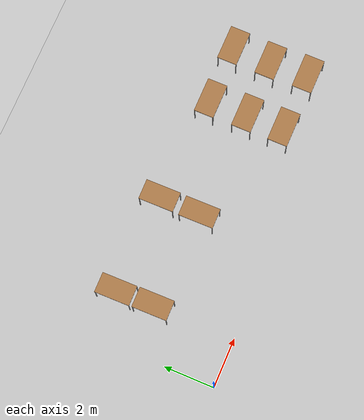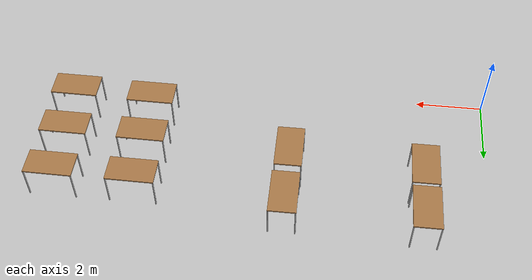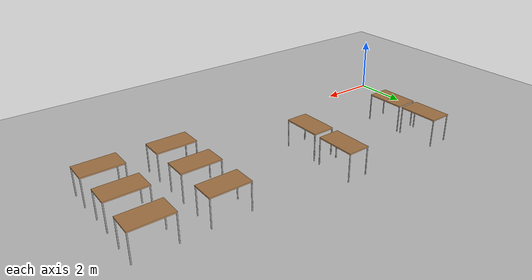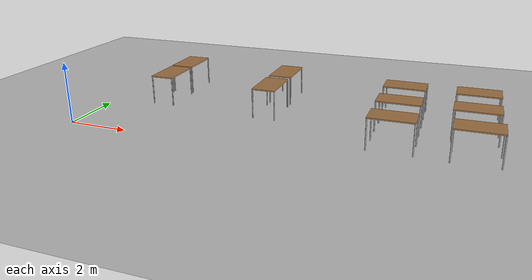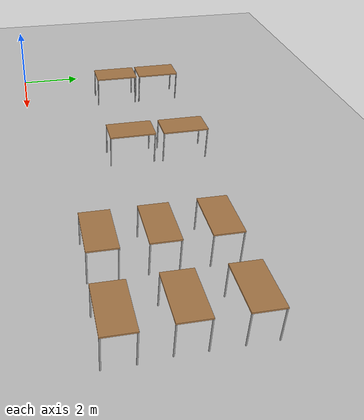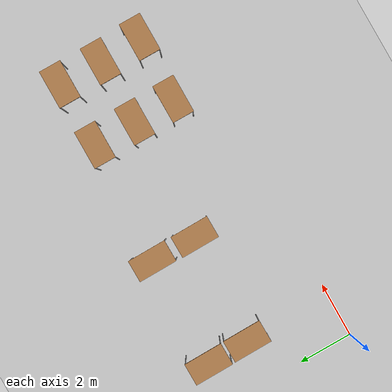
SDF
<sdf version="1.6">
 <world name="default">
  <model name="ground_plane">
   <static>1</static>
   <link name="link">
    <collision name="collision">
     <geometry><plane><normal>0 0 1</normal><size>100 100</size></plane></geometry>
     <surface><friction><ode><mu>100</mu><mu2>50</mu2></ode></friction></surface>
    </collision>
    <visual name="visual">
     <cast_shadows>0</cast_shadows>
     <geometry><plane><normal>0 0 1</normal><size>100 100</size></plane></geometry>
     <material>
      <script><uri>file://media/materials/scripts/gazebo.material</uri><name>Gazebo/Grey</name></script>
     </material>
    </visual>
   </link>
  </model>
  <model name="table">
   <static>0</static>
   <link name="link">
    <collision name="surface">
     <pose>0 0 1 0 -0 0</pose>
     <geometry><box><size>1.5 0.8 0.03</size></box></geometry>
     <surface><friction><ode><mu>0.6</mu><mu2>0.6</mu2></ode></friction></surface>
    </collision>
    <visual name="visual1">
     <pose>0 0 1 0 -0 0</pose>
     <geometry><box><size>1.4 0.8 0.04</size></box></geometry>
     <material>
      <script><uri>file://media/materials/scripts/gazebo.material</uri><name>Gazebo/Wood</name></script>
     </material>
    </visual>
    <collision name="front_left_leg">
     <pose>0.68 0.38 0.5 0 -0 0</pose>
     <geometry><cylinder><radius>0.02</radius><length>1</length></cylinder></geometry>
    </collision>
    <visual name="front_left_leg">
     <pose>0.68 0.38 0.5 0 -0 0</pose>
     <geometry><cylinder><radius>0.02</radius><length>1</length></cylinder></geometry>
     <material>
      <script><uri>file://media/materials/scripts/gazebo.material</uri><name>Gazebo/Grey</name></script>
     </material>
    </visual>
    <collision name="front_right_leg">
     <pose>0.68 -0.38 0.5 0 -0 0</pose>
     <geometry><cylinder><radius>0.02</radius><length>1</length></cylinder></geometry>
    </collision>
    <visual name="front_right_leg">
     <pose>0.68 -0.38 0.5 0 -0 0</pose>
     <geometry><cylinder><radius>0.02</radius><length>1</length></cylinder></geometry>
     <material>
      <script><uri>file://media/materials/scripts/gazebo.material</uri><name>Gazebo/Grey</name></script>
     </material>
    </visual>
    <collision name="back_right_leg">
     <pose>-0.68 -0.38 0.5 0 -0 0</pose>
     <geometry><cylinder><radius>0.02</radius><length>1</length></cylinder></geometry>
    </collision>
    <visual name="back_right_leg">
     <pose>-0.68 -0.38 0.5 0 -0 0</pose>
     <geometry><cylinder><radius>0.02</radius><length>1</length></cylinder></geometry>
     <material>
      <script><uri>file://media/materials/scripts/gazebo.material</uri><name>Gazebo/Grey</name></script>
     </material>
    </visual>
    <collision name="back_left_leg">
     <pose>-0.68 0.38 0.5 0 -0 0</pose>
     <geometry><cylinder><radius>0.02</radius><length>1</length></cylinder></geometry>
    </collision>
    <visual name="back_left_leg">
     <pose>-0.68 0.38 0.5 0 -0 0</pose>
     <geometry><cylinder><radius>0.02</radius><length>1</length></cylinder></geometry>
     <material>
      <script><uri>file://media/materials/scripts/gazebo.material</uri><name>Gazebo/Grey</name></script>
     </material>
    </visual>
    <inertial>
     <inertia><ixx>1</ixx><ixy>0</ixy><ixz>0</ixz><iyy>1</iyy><iyz>0</iyz><izz>1</izz></inertia>
     <mass>1</mass>
    </inertial>
   </link>
   <pose>12.4431 4.43763 -1e-06 0 1e-06 0</pose>
  </model>
  <model name="table_clone">
   <static>0</static>
   <link name="link">
    <collision name="surface">
     <pose>0 0 1 0 -0 0</pose>
     <geometry><box><size>1.5 0.8 0.03</size></box></geometry>
     <surface><friction><ode><mu>0.6</mu><mu2>0.6</mu2></ode></friction></surface>
    </collision>
    <visual name="visual1">
     <pose>0 0 1 0 -0 0</pose>
     <geometry><box><size>1.4 0.8 0.04</size></box></geometry>
     <material>
      <script><uri>file://media/materials/scripts/gazebo.material</uri><name>Gazebo/Wood</name></script>
     </material>
    </visual>
    <collision name="front_left_leg">
     <pose>0.68 0.38 0.5 0 -0 0</pose>
     <geometry><cylinder><radius>0.02</radius><length>1</length></cylinder></geometry>
    </collision>
    <visual name="front_left_leg">
     <pose>0.68 0.38 0.5 0 -0 0</pose>
     <geometry><cylinder><radius>0.02</radius><length>1</length></cylinder></geometry>
     <material>
      <script><uri>file://media/materials/scripts/gazebo.material</uri><name>Gazebo/Grey</name></script>
     </material>
    </visual>
    <collision name="front_right_leg">
     <pose>0.68 -0.38 0.5 0 -0 0</pose>
     <geometry><cylinder><radius>0.02</radius><length>1</length></cylinder></geometry>
    </collision>
    <visual name="front_right_leg">
     <pose>0.68 -0.38 0.5 0 -0 0</pose>
     <geometry><cylinder><radius>0.02</radius><length>1</length></cylinder></geometry>
     <material>
      <script><uri>file://media/materials/scripts/gazebo.material</uri><name>Gazebo/Grey</name></script>
     </material>
    </visual>
    <collision name="back_right_leg">
     <pose>-0.68 -0.38 0.5 0 -0 0</pose>
     <geometry><cylinder><radius>0.02</radius><length>1</length></cylinder></geometry>
    </collision>
    <visual name="back_right_leg">
     <pose>-0.68 -0.38 0.5 0 -0 0</pose>
     <geometry><cylinder><radius>0.02</radius><length>1</length></cylinder></geometry>
     <material>
      <script><uri>file://media/materials/scripts/gazebo.material</uri><name>Gazebo/Grey</name></script>
     </material>
    </visual>
    <collision name="back_left_leg">
     <pose>-0.68 0.38 0.5 0 -0 0</pose>
     <geometry><cylinder><radius>0.02</radius><length>1</length></cylinder></geometry>
    </collision>
    <visual name="back_left_leg">
     <pose>-0.68 0.38 0.5 0 -0 0</pose>
     <geometry><cylinder><radius>0.02</radius><length>1</length></cylinder></geometry>
     <material>
      <script><uri>file://media/materials/scripts/gazebo.material</uri><name>Gazebo/Grey</name></script>
     </material>
    </visual>
    <inertial>
     <inertia><ixx>1</ixx><ixy>0</ixy><ixz>0</ixz><iyy>1</iyy><iyz>0</iyz><izz>1</izz></inertia>
     <mass>1</mass>
    </inertial>
   </link>
   <pose>12.4409 2.87344 -6e-06 2e-06 -5e-06 -0</pose>
  </model>
  <model name="table_clone_0">
   <static>0</static>
   <link name="link">
    <collision name="surface">
     <pose>0 0 1 0 -0 0</pose>
     <geometry><box><size>1.5 0.8 0.03</size></box></geometry>
     <surface><friction><ode><mu>0.6</mu><mu2>0.6</mu2></ode></friction></surface>
    </collision>
    <visual name="visual1">
     <pose>0 0 1 0 -0 0</pose>
     <geometry><box><size>1.4 0.8 0.04</size></box></geometry>
     <material>
      <script><uri>file://media/materials/scripts/gazebo.material</uri><name>Gazebo/Wood</name></script>
     </material>
    </visual>
    <collision name="front_left_leg">
     <pose>0.68 0.38 0.5 0 -0 0</pose>
     <geometry><cylinder><radius>0.02</radius><length>1</length></cylinder></geometry>
    </collision>
    <visual name="front_left_leg">
     <pose>0.68 0.38 0.5 0 -0 0</pose>
     <geometry><cylinder><radius>0.02</radius><length>1</length></cylinder></geometry>
     <material>
      <script><uri>file://media/materials/scripts/gazebo.material</uri><name>Gazebo/Grey</name></script>
     </material>
    </visual>
    <collision name="front_right_leg">
     <pose>0.68 -0.38 0.5 0 -0 0</pose>
     <geometry><cylinder><radius>0.02</radius><length>1</length></cylinder></geometry>
    </collision>
    <visual name="front_right_leg">
     <pose>0.68 -0.38 0.5 0 -0 0</pose>
     <geometry><cylinder><radius>0.02</radius><length>1</length></cylinder></geometry>
     <material>
      <script><uri>file://media/materials/scripts/gazebo.material</uri><name>Gazebo/Grey</name></script>
     </material>
    </visual>
    <collision name="back_right_leg">
     <pose>-0.68 -0.38 0.5 0 -0 0</pose>
     <geometry><cylinder><radius>0.02</radius><length>1</length></cylinder></geometry>
    </collision>
    <visual name="back_right_leg">
     <pose>-0.68 -0.38 0.5 0 -0 0</pose>
     <geometry><cylinder><radius>0.02</radius><length>1</length></cylinder></geometry>
     <material>
      <script><uri>file://media/materials/scripts/gazebo.material</uri><name>Gazebo/Grey</name></script>
     </material>
    </visual>
    <collision name="back_left_leg">
     <pose>-0.68 0.38 0.5 0 -0 0</pose>
     <geometry><cylinder><radius>0.02</radius><length>1</length></cylinder></geometry>
    </collision>
    <visual name="back_left_leg">
     <pose>-0.68 0.38 0.5 0 -0 0</pose>
     <geometry><cylinder><radius>0.02</radius><length>1</length></cylinder></geometry>
     <material>
      <script><uri>file://media/materials/scripts/gazebo.material</uri><name>Gazebo/Grey</name></script>
     </material>
    </visual>
    <inertial>
     <inertia><ixx>1</ixx><ixy>0</ixy><ixz>0</ixz><iyy>1</iyy><iyz>0</iyz><izz>1</izz></inertia>
     <mass>1</mass>
    </inertial>
   </link>
   <pose>12.5043 1.3337 -1e-06 0 1e-06 0</pose>
  </model>
  <model name="table_clone_1">
   <static>0</static>
   <link name="link">
    <collision name="surface">
     <pose>0 0 1 0 -0 0</pose>
     <geometry><box><size>1.5 0.8 0.03</size></box></geometry>
     <surface><friction><ode><mu>0.6</mu><mu2>0.6</mu2></ode></friction></surface>
    </collision>
    <visual name="visual1">
     <pose>0 0 1 0 -0 0</pose>
     <geometry><box><size>1.4 0.8 0.04</size></box></geometry>
     <material>
      <script><uri>file://media/materials/scripts/gazebo.material</uri><name>Gazebo/Wood</name></script>
     </material>
    </visual>
    <collision name="front_left_leg">
     <pose>0.68 0.38 0.5 0 -0 0</pose>
     <geometry><cylinder><radius>0.02</radius><length>1</length></cylinder></geometry>
    </collision>
    <visual name="front_left_leg">
     <pose>0.68 0.38 0.5 0 -0 0</pose>
     <geometry><cylinder><radius>0.02</radius><length>1</length></cylinder></geometry>
     <material>
      <script><uri>file://media/materials/scripts/gazebo.material</uri><name>Gazebo/Grey</name></script>
     </material>
    </visual>
    <collision name="front_right_leg">
     <pose>0.68 -0.38 0.5 0 -0 0</pose>
     <geometry><cylinder><radius>0.02</radius><length>1</length></cylinder></geometry>
    </collision>
    <visual name="front_right_leg">
     <pose>0.68 -0.38 0.5 0 -0 0</pose>
     <geometry><cylinder><radius>0.02</radius><length>1</length></cylinder></geometry>
     <material>
      <script><uri>file://media/materials/scripts/gazebo.material</uri><name>Gazebo/Grey</name></script>
     </material>
    </visual>
    <collision name="back_right_leg">
     <pose>-0.68 -0.38 0.5 0 -0 0</pose>
     <geometry><cylinder><radius>0.02</radius><length>1</length></cylinder></geometry>
    </collision>
    <visual name="back_right_leg">
     <pose>-0.68 -0.38 0.5 0 -0 0</pose>
     <geometry><cylinder><radius>0.02</radius><length>1</length></cylinder></geometry>
     <material>
      <script><uri>file://media/materials/scripts/gazebo.material</uri><name>Gazebo/Grey</name></script>
     </material>
    </visual>
    <collision name="back_left_leg">
     <pose>-0.68 0.38 0.5 0 -0 0</pose>
     <geometry><cylinder><radius>0.02</radius><length>1</length></cylinder></geometry>
    </collision>
    <visual name="back_left_leg">
     <pose>-0.68 0.38 0.5 0 -0 0</pose>
     <geometry><cylinder><radius>0.02</radius><length>1</length></cylinder></geometry>
     <material>
      <script><uri>file://media/materials/scripts/gazebo.material</uri><name>Gazebo/Grey</name></script>
     </material>
    </visual>
    <inertial>
     <inertia><ixx>1</ixx><ixy>0</ixy><ixz>0</ixz><iyy>1</iyy><iyz>0</iyz><izz>1</izz></inertia>
     <mass>1</mass>
    </inertial>
   </link>
   <pose>10.1469 1.38241 -8e-06 1e-06 -0 0</pose>
  </model>
  <model name="table_clone_2">
   <static>0</static>
   <link name="link">
    <collision name="surface">
     <pose>0 0 1 0 -0 0</pose>
     <geometry><box><size>1.5 0.8 0.03</size></box></geometry>
     <surface><friction><ode><mu>0.6</mu><mu2>0.6</mu2></ode></friction></surface>
    </collision>
    <visual name="visual1">
     <pose>0 0 1 0 -0 0</pose>
     <geometry><box><size>1.4 0.8 0.04</size></box></geometry>
     <material>
      <script><uri>file://media/materials/scripts/gazebo.material</uri><name>Gazebo/Wood</name></script>
     </material>
    </visual>
    <collision name="front_left_leg">
     <pose>0.68 0.38 0.5 0 -0 0</pose>
     <geometry><cylinder><radius>0.02</radius><length>1</length></cylinder></geometry>
    </collision>
    <visual name="front_left_leg">
     <pose>0.68 0.38 0.5 0 -0 0</pose>
     <geometry><cylinder><radius>0.02</radius><length>1</length></cylinder></geometry>
     <material>
      <script><uri>file://media/materials/scripts/gazebo.material</uri><name>Gazebo/Grey</name></script>
     </material>
    </visual>
    <collision name="front_right_leg">
     <pose>0.68 -0.38 0.5 0 -0 0</pose>
     <geometry><cylinder><radius>0.02</radius><length>1</length></cylinder></geometry>
    </collision>
    <visual name="front_right_leg">
     <pose>0.68 -0.38 0.5 0 -0 0</pose>
     <geometry><cylinder><radius>0.02</radius><length>1</length></cylinder></geometry>
     <material>
      <script><uri>file://media/materials/scripts/gazebo.material</uri><name>Gazebo/Grey</name></script>
     </material>
    </visual>
    <collision name="back_right_leg">
     <pose>-0.68 -0.38 0.5 0 -0 0</pose>
     <geometry><cylinder><radius>0.02</radius><length>1</length></cylinder></geometry>
    </collision>
    <visual name="back_right_leg">
     <pose>-0.68 -0.38 0.5 0 -0 0</pose>
     <geometry><cylinder><radius>0.02</radius><length>1</length></cylinder></geometry>
     <material>
      <script><uri>file://media/materials/scripts/gazebo.material</uri><name>Gazebo/Grey</name></script>
     </material>
    </visual>
    <collision name="back_left_leg">
     <pose>-0.68 0.38 0.5 0 -0 0</pose>
     <geometry><cylinder><radius>0.02</radius><length>1</length></cylinder></geometry>
    </collision>
    <visual name="back_left_leg">
     <pose>-0.68 0.38 0.5 0 -0 0</pose>
     <geometry><cylinder><radius>0.02</radius><length>1</length></cylinder></geometry>
     <material>
      <script><uri>file://media/materials/scripts/gazebo.material</uri><name>Gazebo/Grey</name></script>
     </material>
    </visual>
    <inertial>
     <inertia><ixx>1</ixx><ixy>0</ixy><ixz>0</ixz><iyy>1</iyy><iyz>0</iyz><izz>1</izz></inertia>
     <mass>1</mass>
    </inertial>
   </link>
   <pose>10.1251 2.87838 -1e-06 -1e-06 0 0</pose>
  </model>
  <model name="table_clone_3">
   <static>0</static>
   <link name="link">
    <collision name="surface">
     <pose>0 0 1 0 -0 0</pose>
     <geometry><box><size>1.5 0.8 0.03</size></box></geometry>
     <surface><friction><ode><mu>0.6</mu><mu2>0.6</mu2></ode></friction></surface>
    </collision>
    <visual name="visual1">
     <pose>0 0 1 0 -0 0</pose>
     <geometry><box><size>1.4 0.8 0.04</size></box></geometry>
     <material>
      <script><uri>file://media/materials/scripts/gazebo.material</uri><name>Gazebo/Wood</name></script>
     </material>
    </visual>
    <collision name="front_left_leg">
     <pose>0.68 0.38 0.5 0 -0 0</pose>
     <geometry><cylinder><radius>0.02</radius><length>1</length></cylinder></geometry>
    </collision>
    <visual name="front_left_leg">
     <pose>0.68 0.38 0.5 0 -0 0</pose>
     <geometry><cylinder><radius>0.02</radius><length>1</length></cylinder></geometry>
     <material>
      <script><uri>file://media/materials/scripts/gazebo.material</uri><name>Gazebo/Grey</name></script>
     </material>
    </visual>
    <collision name="front_right_leg">
     <pose>0.68 -0.38 0.5 0 -0 0</pose>
     <geometry><cylinder><radius>0.02</radius><length>1</length></cylinder></geometry>
    </collision>
    <visual name="front_right_leg">
     <pose>0.68 -0.38 0.5 0 -0 0</pose>
     <geometry><cylinder><radius>0.02</radius><length>1</length></cylinder></geometry>
     <material>
      <script><uri>file://media/materials/scripts/gazebo.material</uri><name>Gazebo/Grey</name></script>
     </material>
    </visual>
    <collision name="back_right_leg">
     <pose>-0.68 -0.38 0.5 0 -0 0</pose>
     <geometry><cylinder><radius>0.02</radius><length>1</length></cylinder></geometry>
    </collision>
    <visual name="back_right_leg">
     <pose>-0.68 -0.38 0.5 0 -0 0</pose>
     <geometry><cylinder><radius>0.02</radius><length>1</length></cylinder></geometry>
     <material>
      <script><uri>file://media/materials/scripts/gazebo.material</uri><name>Gazebo/Grey</name></script>
     </material>
    </visual>
    <collision name="back_left_leg">
     <pose>-0.68 0.38 0.5 0 -0 0</pose>
     <geometry><cylinder><radius>0.02</radius><length>1</length></cylinder></geometry>
    </collision>
    <visual name="back_left_leg">
     <pose>-0.68 0.38 0.5 0 -0 0</pose>
     <geometry><cylinder><radius>0.02</radius><length>1</length></cylinder></geometry>
     <material>
      <script><uri>file://media/materials/scripts/gazebo.material</uri><name>Gazebo/Grey</name></script>
     </material>
    </visual>
    <inertial>
     <inertia><ixx>1</ixx><ixy>0</ixy><ixz>0</ixz><iyy>1</iyy><iyz>0</iyz><izz>1</izz></inertia>
     <mass>1</mass>
    </inertial>
   </link>
   <pose>10.101 4.41779 0.002435 -0 0.003479 4e-06</pose>
  </model>
  <model name="table_clone_4">
   <static>0</static>
   <link name="link">
    <collision name="surface">
     <pose>0 0 1 0 -0 0</pose>
     <geometry><box><size>1.5 0.8 0.03</size></box></geometry>
     <surface><friction><ode><mu>0.6</mu><mu2>0.6</mu2></ode></friction></surface>
    </collision>
    <visual name="visual1">
     <pose>0 0 1 0 -0 0</pose>
     <geometry><box><size>1.4 0.8 0.04</size></box></geometry>
     <material>
      <script><uri>file://media/materials/scripts/gazebo.material</uri><name>Gazebo/Wood</name></script>
     </material>
    </visual>
    <collision name="front_left_leg">
     <pose>0.68 0.38 0.5 0 -0 0</pose>
     <geometry><cylinder><radius>0.02</radius><length>1</length></cylinder></geometry>
    </collision>
    <visual name="front_left_leg">
     <pose>0.68 0.38 0.5 0 -0 0</pose>
     <geometry><cylinder><radius>0.02</radius><length>1</length></cylinder></geometry>
     <material>
      <script><uri>file://media/materials/scripts/gazebo.material</uri><name>Gazebo/Grey</name></script>
     </material>
    </visual>
    <collision name="front_right_leg">
     <pose>0.68 -0.38 0.5 0 -0 0</pose>
     <geometry><cylinder><radius>0.02</radius><length>1</length></cylinder></geometry>
    </collision>
    <visual name="front_right_leg">
     <pose>0.68 -0.38 0.5 0 -0 0</pose>
     <geometry><cylinder><radius>0.02</radius><length>1</length></cylinder></geometry>
     <material>
      <script><uri>file://media/materials/scripts/gazebo.material</uri><name>Gazebo/Grey</name></script>
     </material>
    </visual>
    <collision name="back_right_leg">
     <pose>-0.68 -0.38 0.5 0 -0 0</pose>
     <geometry><cylinder><radius>0.02</radius><length>1</length></cylinder></geometry>
    </collision>
    <visual name="back_right_leg">
     <pose>-0.68 -0.38 0.5 0 -0 0</pose>
     <geometry><cylinder><radius>0.02</radius><length>1</length></cylinder></geometry>
     <material>
      <script><uri>file://media/materials/scripts/gazebo.material</uri><name>Gazebo/Grey</name></script>
     </material>
    </visual>
    <collision name="back_left_leg">
     <pose>-0.68 0.38 0.5 0 -0 0</pose>
     <geometry><cylinder><radius>0.02</radius><length>1</length></cylinder></geometry>
    </collision>
    <visual name="back_left_leg">
     <pose>-0.68 0.38 0.5 0 -0 0</pose>
     <geometry><cylinder><radius>0.02</radius><length>1</length></cylinder></geometry>
     <material>
      <script><uri>file://media/materials/scripts/gazebo.material</uri><name>Gazebo/Grey</name></script>
     </material>
    </visual>
    <inertial>
     <inertia><ixx>1</ixx><ixy>0</ixy><ixz>0</ixz><iyy>1</iyy><iyz>0</iyz><izz>1</izz></inertia>
     <mass>1</mass>
    </inertial>
   </link>
   <pose>1.84279 4.73774 0 1e-06 -0 -1.55904</pose>
  </model>
  <model name="table_clone_4_clone">
   <static>0</static>
   <link name="link">
    <collision name="surface">
     <pose>0 0 1 0 -0 0</pose>
     <geometry><box><size>1.5 0.8 0.03</size></box></geometry>
     <surface><friction><ode><mu>0.6</mu><mu2>0.6</mu2></ode></friction></surface>
    </collision>
    <visual name="visual1">
     <pose>0 0 1 0 -0 0</pose>
     <geometry><box><size>1.4 0.8 0.04</size></box></geometry>
     <material>
      <script><uri>file://media/materials/scripts/gazebo.material</uri><name>Gazebo/Wood</name></script>
     </material>
    </visual>
    <collision name="front_left_leg">
     <pose>0.68 0.38 0.5 0 -0 0</pose>
     <geometry><cylinder><radius>0.02</radius><length>1</length></cylinder></geometry>
    </collision>
    <visual name="front_left_leg">
     <pose>0.68 0.38 0.5 0 -0 0</pose>
     <geometry><cylinder><radius>0.02</radius><length>1</length></cylinder></geometry>
     <material>
      <script><uri>file://media/materials/scripts/gazebo.material</uri><name>Gazebo/Grey</name></script>
     </material>
    </visual>
    <collision name="front_right_leg">
     <pose>0.68 -0.38 0.5 0 -0 0</pose>
     <geometry><cylinder><radius>0.02</radius><length>1</length></cylinder></geometry>
    </collision>
    <visual name="front_right_leg">
     <pose>0.68 -0.38 0.5 0 -0 0</pose>
     <geometry><cylinder><radius>0.02</radius><length>1</length></cylinder></geometry>
     <material>
      <script><uri>file://media/materials/scripts/gazebo.material</uri><name>Gazebo/Grey</name></script>
     </material>
    </visual>
    <collision name="back_right_leg">
     <pose>-0.68 -0.38 0.5 0 -0 0</pose>
     <geometry><cylinder><radius>0.02</radius><length>1</length></cylinder></geometry>
    </collision>
    <visual name="back_right_leg">
     <pose>-0.68 -0.38 0.5 0 -0 0</pose>
     <geometry><cylinder><radius>0.02</radius><length>1</length></cylinder></geometry>
     <material>
      <script><uri>file://media/materials/scripts/gazebo.material</uri><name>Gazebo/Grey</name></script>
     </material>
    </visual>
    <collision name="back_left_leg">
     <pose>-0.68 0.38 0.5 0 -0 0</pose>
     <geometry><cylinder><radius>0.02</radius><length>1</length></cylinder></geometry>
    </collision>
    <visual name="back_left_leg">
     <pose>-0.68 0.38 0.5 0 -0 0</pose>
     <geometry><cylinder><radius>0.02</radius><length>1</length></cylinder></geometry>
     <material>
      <script><uri>file://media/materials/scripts/gazebo.material</uri><name>Gazebo/Grey</name></script>
     </material>
    </visual>
    <inertial>
     <inertia><ixx>1</ixx><ixy>0</ixy><ixz>0</ixz><iyy>1</iyy><iyz>0</iyz><izz>1</izz></inertia>
     <mass>1</mass>
    </inertial>
   </link>
   <pose>1.87286 3.23799 0 0 0 -1.55904</pose>
  </model>
  <model name="table_clone_4_clone_0">
   <static>0</static>
   <link name="link">
    <collision name="surface">
     <pose>0 0 1 0 -0 0</pose>
     <geometry><box><size>1.5 0.8 0.03</size></box></geometry>
     <surface><friction><ode><mu>0.6</mu><mu2>0.6</mu2></ode></friction></surface>
    </collision>
    <visual name="visual1">
     <pose>0 0 1 0 -0 0</pose>
     <geometry><box><size>1.4 0.8 0.04</size></box></geometry>
     <material>
      <script><uri>file://media/materials/scripts/gazebo.material</uri><name>Gazebo/Wood</name></script>
     </material>
    </visual>
    <collision name="front_left_leg">
     <pose>0.68 0.38 0.5 0 -0 0</pose>
     <geometry><cylinder><radius>0.02</radius><length>1</length></cylinder></geometry>
    </collision>
    <visual name="front_left_leg">
     <pose>0.68 0.38 0.5 0 -0 0</pose>
     <geometry><cylinder><radius>0.02</radius><length>1</length></cylinder></geometry>
     <material>
      <script><uri>file://media/materials/scripts/gazebo.material</uri><name>Gazebo/Grey</name></script>
     </material>
    </visual>
    <collision name="front_right_leg">
     <pose>0.68 -0.38 0.5 0 -0 0</pose>
     <geometry><cylinder><radius>0.02</radius><length>1</length></cylinder></geometry>
    </collision>
    <visual name="front_right_leg">
     <pose>0.68 -0.38 0.5 0 -0 0</pose>
     <geometry><cylinder><radius>0.02</radius><length>1</length></cylinder></geometry>
     <material>
      <script><uri>file://media/materials/scripts/gazebo.material</uri><name>Gazebo/Grey</name></script>
     </material>
    </visual>
    <collision name="back_right_leg">
     <pose>-0.68 -0.38 0.5 0 -0 0</pose>
     <geometry><cylinder><radius>0.02</radius><length>1</length></cylinder></geometry>
    </collision>
    <visual name="back_right_leg">
     <pose>-0.68 -0.38 0.5 0 -0 0</pose>
     <geometry><cylinder><radius>0.02</radius><length>1</length></cylinder></geometry>
     <material>
      <script><uri>file://media/materials/scripts/gazebo.material</uri><name>Gazebo/Grey</name></script>
     </material>
    </visual>
    <collision name="back_left_leg">
     <pose>-0.68 0.38 0.5 0 -0 0</pose>
     <geometry><cylinder><radius>0.02</radius><length>1</length></cylinder></geometry>
    </collision>
    <visual name="back_left_leg">
     <pose>-0.68 0.38 0.5 0 -0 0</pose>
     <geometry><cylinder><radius>0.02</radius><length>1</length></cylinder></geometry>
     <material>
      <script><uri>file://media/materials/scripts/gazebo.material</uri><name>Gazebo/Grey</name></script>
     </material>
    </visual>
    <inertial>
     <inertia><ixx>1</ixx><ixy>0</ixy><ixz>0</ixz><iyy>1</iyy><iyz>0</iyz><izz>1</izz></inertia>
     <mass>1</mass>
    </inertial>
   </link>
   <pose>5.77261 4.67428 -2e-06 0 1e-06 -1.55897</pose>
  </model>
  <model name="table_clone_4_clone_1">
   <static>0</static>
   <link name="link">
    <collision name="surface">
     <pose>0 0 1 0 -0 0</pose>
     <geometry><box><size>1.5 0.8 0.03</size></box></geometry>
     <surface><friction><ode><mu>0.6</mu><mu2>0.6</mu2></ode></friction></surface>
    </collision>
    <visual name="visual1">
     <pose>0 0 1 0 -0 0</pose>
     <geometry><box><size>1.4 0.8 0.04</size></box></geometry>
     <material>
      <script><uri>file://media/materials/scripts/gazebo.material</uri><name>Gazebo/Wood</name></script>
     </material>
    </visual>
    <collision name="front_left_leg">
     <pose>0.68 0.38 0.5 0 -0 0</pose>
     <geometry><cylinder><radius>0.02</radius><length>1</length></cylinder></geometry>
    </collision>
    <visual name="front_left_leg">
     <pose>0.68 0.38 0.5 0 -0 0</pose>
     <geometry><cylinder><radius>0.02</radius><length>1</length></cylinder></geometry>
     <material>
      <script><uri>file://media/materials/scripts/gazebo.material</uri><name>Gazebo/Grey</name></script>
     </material>
    </visual>
    <collision name="front_right_leg">
     <pose>0.68 -0.38 0.5 0 -0 0</pose>
     <geometry><cylinder><radius>0.02</radius><length>1</length></cylinder></geometry>
    </collision>
    <visual name="front_right_leg">
     <pose>0.68 -0.38 0.5 0 -0 0</pose>
     <geometry><cylinder><radius>0.02</radius><length>1</length></cylinder></geometry>
     <material>
      <script><uri>file://media/materials/scripts/gazebo.material</uri><name>Gazebo/Grey</name></script>
     </material>
    </visual>
    <collision name="back_right_leg">
     <pose>-0.68 -0.38 0.5 0 -0 0</pose>
     <geometry><cylinder><radius>0.02</radius><length>1</length></cylinder></geometry>
    </collision>
    <visual name="back_right_leg">
     <pose>-0.68 -0.38 0.5 0 -0 0</pose>
     <geometry><cylinder><radius>0.02</radius><length>1</length></cylinder></geometry>
     <material>
      <script><uri>file://media/materials/scripts/gazebo.material</uri><name>Gazebo/Grey</name></script>
     </material>
    </visual>
    <collision name="back_left_leg">
     <pose>-0.68 0.38 0.5 0 -0 0</pose>
     <geometry><cylinder><radius>0.02</radius><length>1</length></cylinder></geometry>
    </collision>
    <visual name="back_left_leg">
     <pose>-0.68 0.38 0.5 0 -0 0</pose>
     <geometry><cylinder><radius>0.02</radius><length>1</length></cylinder></geometry>
     <material>
      <script><uri>file://media/materials/scripts/gazebo.material</uri><name>Gazebo/Grey</name></script>
     </material>
    </visual>
    <inertial>
     <inertia><ixx>1</ixx><ixy>0</ixy><ixz>0</ixz><iyy>1</iyy><iyz>0</iyz><izz>1</izz></inertia>
     <mass>1</mass>
    </inertial>
   </link>
   <pose>5.77275 3.03866 -1e-06 0 1e-06 -1.55897</pose>
  </model>
 </world>
</sdf>
